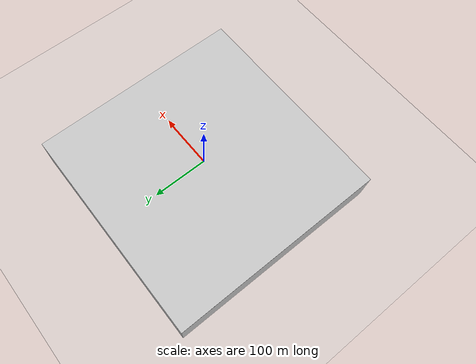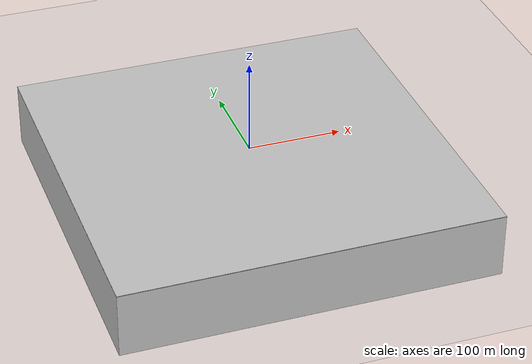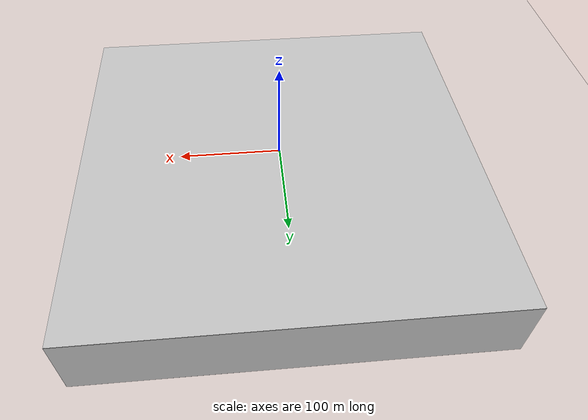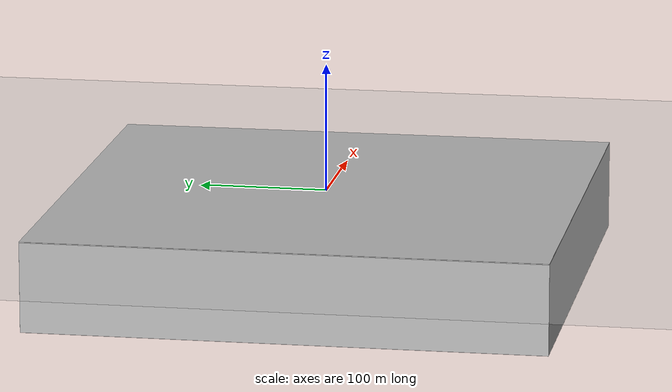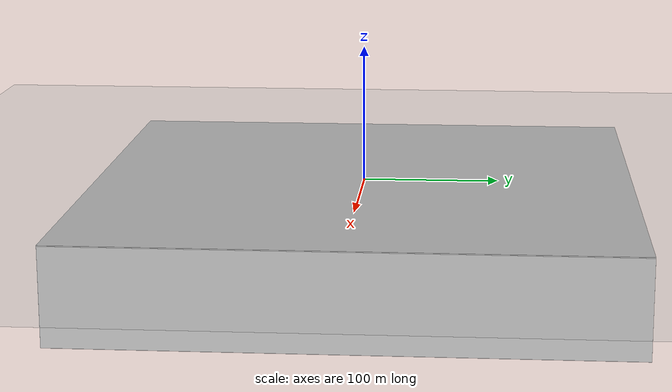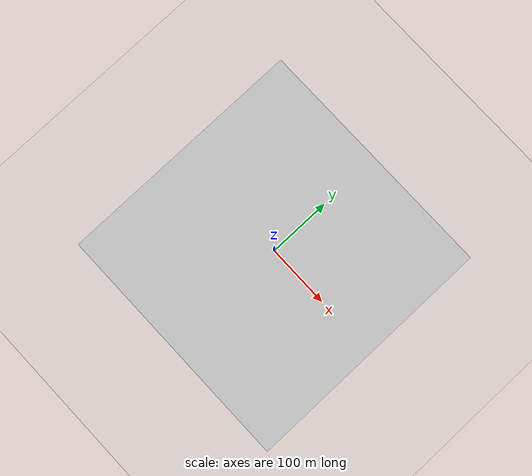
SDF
<?xml version="1.0"?>
<sdf version="1.6">
  <world name="default">

    <gravity>0 0 0</gravity>

    <physics name="default_physics" default="true" type="ode">
      <max_step_size>0.002</max_step_size>
      <real_time_factor>1</real_time_factor>
      <real_time_update_rate>500</real_time_update_rate>
    </physics>

    <scene>
      <ambient>0.01 0.01 0.01 1.0</ambient>
      <shadows>1</shadows>
      <fog>
        <color>0.1 0.2 0.3 1.0</color>
        <type>linear</type>
        <density>0.1</density>
        <start>50</start>
        <end>200</end>
      </fog>
    </scene>

    <include>
      <uri>model://sun</uri>
      <name>sun</name>
    </include>

    <include>
      <uri>model://warzone_ocean</uri>
      <name>warzone_ocean</name>
    </include>

    <plugin name="warzone" filename="libwarzone.so">
      <submarine>submarine</submarine>
      <torpedo>torpedo</torpedo>
      <radius>50</radius>
      <angular_vel>0.05</angular_vel>
      <depth>-10</depth>
    </plugin>

  </world>
</sdf>

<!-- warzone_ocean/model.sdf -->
<sdf version='1.7'>
  <model name="warzone_ocean">
    <static>1</static>
    <link name="warzone_ocean_link">
      <visual name="surface">
        <pose>0 0 0 0 0 0</pose>
        <cast_shadows>false</cast_shadows>
        <geometry>
          <plane>
            <normal>0 0 1</normal>
            <size>400 400</size>
          </plane>
        </geometry>
        <material>
          <script>
            <uri>model://warzone_ocean/materials/scripts</uri>
            <uri>model://warzone_ocean/materials/textures</uri>
            <name>warzone_ocean/surface</name>
          </script>
        </material>
      </visual>

      <visual name="surface_bottom">
        <pose>0 0 0 3.14159265359 0 0</pose>
        <cast_shadows>false</cast_shadows>
        <geometry>
          <plane>
            <normal>0 0 1</normal>
            <size>400 400</size>
          </plane>
        </geometry>
        <material>
          <script>
            <uri>model://warzone_ocean/materials/scripts</uri>
            <name>warzone_ocean/wall</name>
          </script>
        </material>
      </visual>

      <visual name="seabed">
        <pose>0 0 -70.0 0 0 0</pose>
        <geometry>
          <plane>
            <normal>0 0 1</normal>
            <size>400 400</size>
          </plane>
        </geometry>
        <material>
          <script>
            <uri>model://warzone_ocean/materials/scripts</uri>
            <uri>model://warzone_ocean/materials/textures</uri>
            <name>warzone_ocean/sand</name>
          </script>
        </material>
      </visual>

      <visual name="front_wall">
        <pose>0 200 -35.0 1.57079632679 0 0</pose>
        <cast_shadows>false</cast_shadows>
        <geometry>
          <plane>
            <normal>0 0 1</normal>
            <size>400 70</size>
          </plane>
        </geometry>
        <material>
          <script>
            <uri>model://warzone_ocean/materials/scripts</uri>
            <name>warzone_ocean/wall</name>
          </script>
        </material>
      </visual>

      <visual name="back_wall">
        <pose>0 -200 -35.0 -1.57079632679 0 0</pose>
        <cast_shadows>false</cast_shadows>
        <geometry>
          <plane>
            <normal>0 0 1</normal>
            <size>400 70</size>
          </plane>
        </geometry>
        <material>
          <script>
            <uri>model://warzone_ocean/materials/scripts</uri>
            <name>warzone_ocean/wall</name>
          </script>
        </material>
      </visual>

      <visual name="left_wall">
        <pose>200 0 -35.0 0 -1.57079632679 0</pose>
        <cast_shadows>false</cast_shadows>
        <geometry>
          <plane>
            <normal>0 0 1</normal>
            <size>70 400</size>
          </plane>
        </geometry>
        <material>
          <script>
            <uri>model://warzone_ocean/materials/scripts</uri>
            <name>warzone_ocean/wall</name>
          </script>
        </material>
      </visual>

      <visual name="right_wall">
        <pose>-200 0 -35.0 0 1.57079632679 0</pose>
        <cast_shadows>false</cast_shadows>
        <geometry>
          <plane>
            <normal>0 0 1</normal>
            <size>70 400</size>
          </plane>
        </geometry>
        <material>
          <script>
            <uri>model://warzone_ocean/materials/scripts</uri>
            <name>warzone_ocean/wall</name>
          </script>
        </material>
      </visual>
    </link>
  </model>
</sdf>
